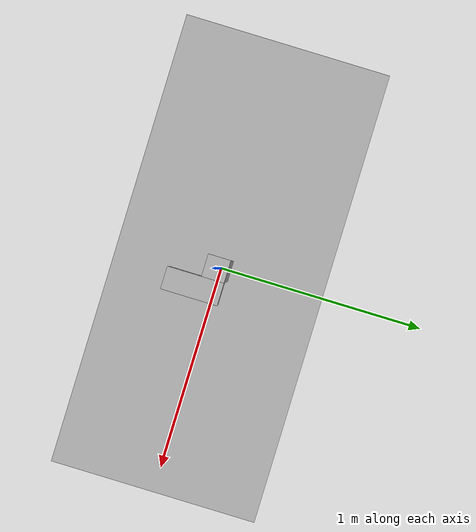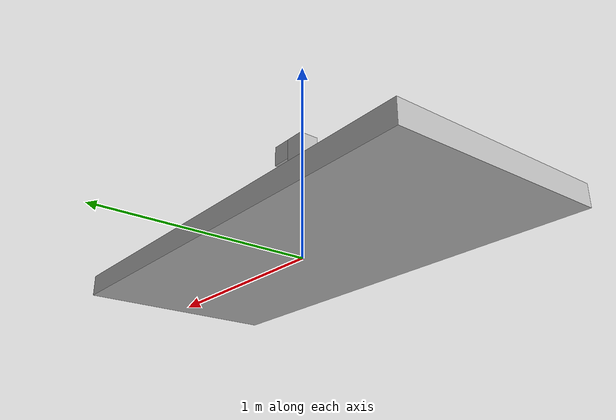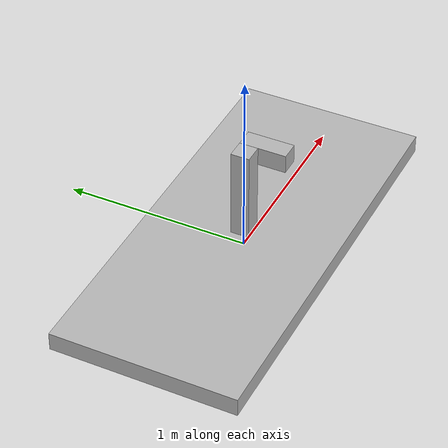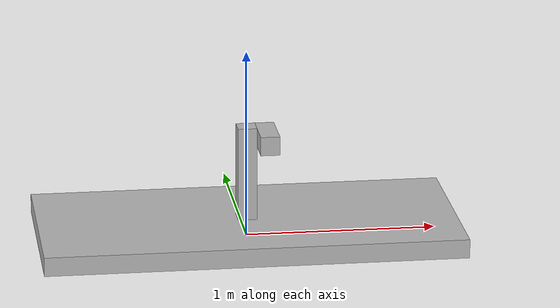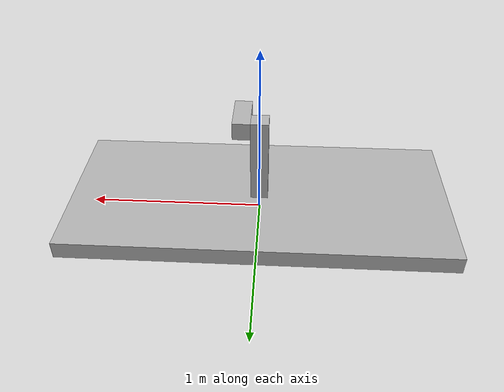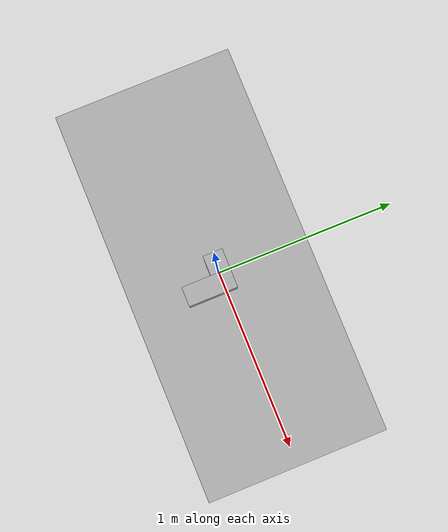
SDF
<?xml version="1.0" ?>
<!-- |    This document was autogenerated by xacro from /home/user/projects/wasp/gz/models/revolute_demo/model.sdf.xacro | -->
<!-- |    EDITING THIS FILE BY HAND IS NOT RECOMMENDED                                 | -->
<sdf version="1.5">
  <model name="revolute_joint">
    <link name="heavy_base">
      <!-- position the base such that the bottom touches the floor -->
      <pose>0 0 0.05 0 0 0</pose>
      <inertial>
        <mass>100</mass>
        <!-- kg -->
        <inertia>
          <!-- (mass / 12) * (y*y + z*z) -->
          <ixx>8.4167</ixx>
          <ixy>0</ixy>
          <ixz>0</ixz>
          <!-- (mass / 12) * (x*x + z*z) -->
          <iyy>40.417</iyy>
          <iyz>0</iyz>
          <!-- (mass / 12) * (y*y + x*x) -->
          <izz>48.667</izz>
        </inertia>
      </inertial>
      <!-- Same geometry as visual -->
      <collision name="heavy_base_collision">
        <geometry>
          <box>
            <size>2.2 1 0.1</size>
          </box>
        </geometry>
      </collision>
      <!-- Same geometry as collision -->
      <visual name="heavy_base_visual">
        <geometry>
          <box>
            <size>2.2 1 0.1</size>
          </box>
        </geometry>
        <material>
          <script>
            <uri>model://demo_joint_types/materials/scripts</uri>
            <uri>model://demo_joint_types/materials/textures</uri>
            <name>demo_joint_types/legend</name>
          </script>
        </material>
      </visual>
    </link>
    <link name="base">
      <!-- Put the bottom of base on top of the heavy base -->
      <pose>0 0 0.35 0 0 0</pose>
      <inertial>
        <inertia>
          <!-- (mass / 12) * (y*y + z*z) -->
          <ixx>0.021667</ixx>
          <ixy>0</ixy>
          <ixz>0</ixz>
          <!-- (mass / 12) * (x*x + z*z) -->
          <iyy>0.021667</iyy>
          <iyz>0</iyz>
          <!-- (mass / 12) * (y*y + x*x) -->
          <izz>0.0016667</izz>
        </inertia>
      </inertial>
      <!-- Same geometry as visual -->
      <collision name="base_collision">
        <geometry>
          <box>
            <size>0.1 0.1 0.5</size>
          </box>
        </geometry>
      </collision>
      <!-- Same geometry as collision -->
      <visual name="base_visual">
        <geometry>
          <box>
            <size>0.1 0.1 0.5</size>
          </box>
        </geometry>
        <material>
          <script>
            <uri>model://demo_joint_types/materials/scripts</uri>
            <uri>model://demo_joint_types/materials/textures</uri>
            <name>demo_joint_types/parent</name>
          </script>
        </material>
      </visual>
    </link>
    <joint name="prismatic_base_to_heavy_base" type="fixed">
      <parent>heavy_base</parent>
      <child>base</child>
    </joint>
    <link name="revolute_arm">
      <pose>0.1 -0.075 0.55 0 0 0</pose>
      <inertial>
        <inertia>
          <!-- (mass / 12) * (y*y + z*z) -->
          <ixx>0.0060417</ixx>
          <ixy>0</ixy>
          <ixz>0</ixz>
          <!-- (mass / 12) * (x*x + z*z) -->
          <iyy>0.0016667</iyy>
          <iyz>0</iyz>
          <!-- (mass / 12) * (y*y + x*x) -->
          <izz>0.0060417</izz>
        </inertia>
      </inertial>
      <!-- Same geometry as visual -->
      <collision name="revolute_arm_collision">
        <geometry>
          <box>
            <size>0.1 0.25 0.1</size>
          </box>
        </geometry>
      </collision>
      <!-- Same geometry as collision -->
      <visual name="revolute_arm_visual">
        <geometry>
          <box>
            <size>0.1 0.25 0.1</size>
          </box>
        </geometry>
        <material>
          <script>
            <uri>model://demo_joint_types/materials/scripts</uri>
            <uri>model://demo_joint_types/materials/textures</uri>
            <name>demo_joint_types/child</name>
          </script>
        </material>
      </visual>
    </link>
    <joint name="revolute_demo" type="revolute">
      <parent>base</parent>
      <child>revolute_arm</child>
      <axis>
        <xyz>1 0 0</xyz>
      </axis>
      <!-- Move the joint to the size a bit to be more like an arm
                 y = 0.5 * relative_arm_sz_y - fudge(0.05) -->
      <pose>0 0.075 0 0 0 0</pose>
    </joint>
  </model>
</sdf>
